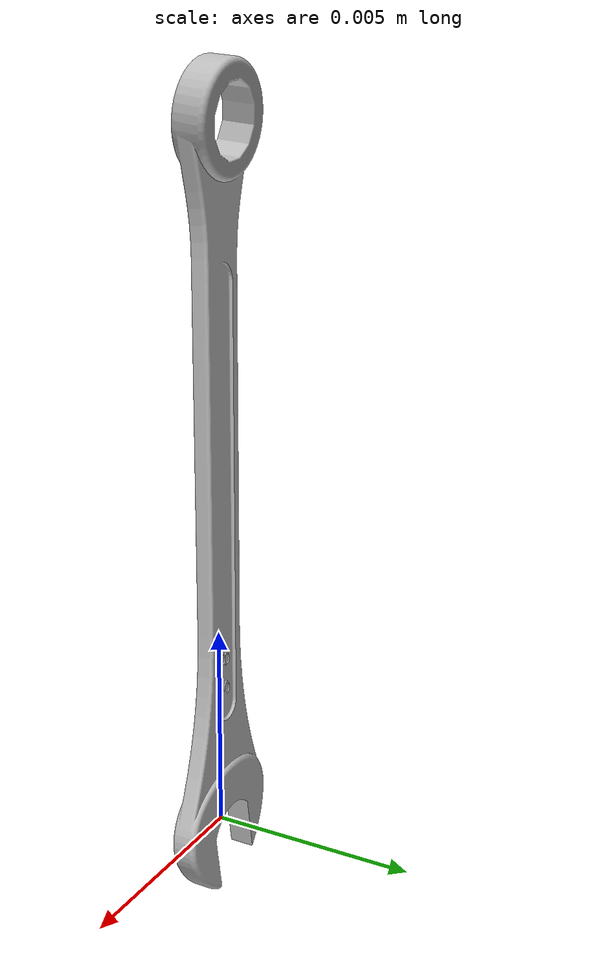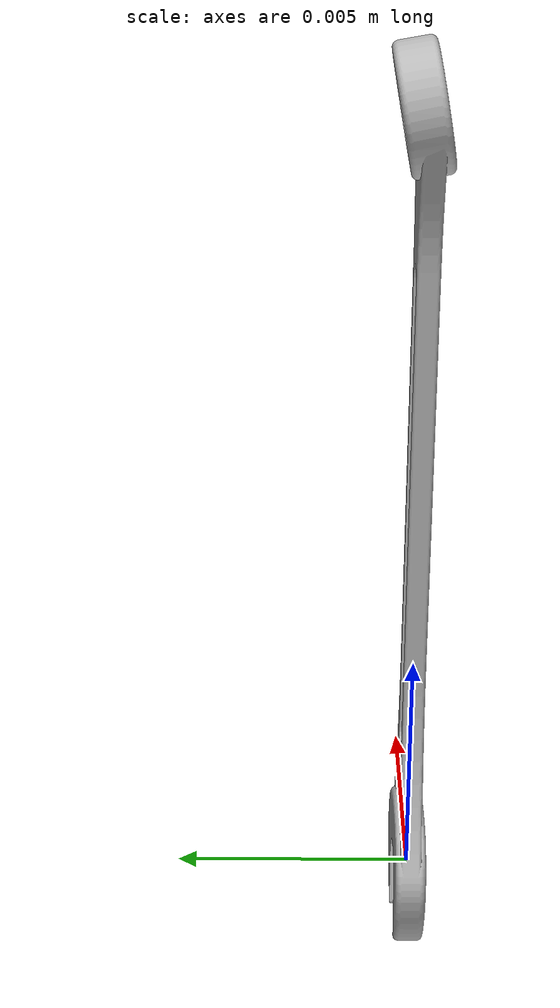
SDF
<?xml version="1.0" ?>
<sdf version="1.5">
  <model name="wrench">
    <static>false</static>
    <link name="link">
    	<!-- orient the model with 90 degree roll and on one end-->
		<pose>0 0 0 0 -1.571 0</pose>
		<inertial>
		    <mass>.3</mass>
	        <inertia>
	          <ixx>7.836677</ixx>
	          <ixy>-3.548755</ixy>
	          <ixz>-2.023339</ixz>
	          <iyy>585.166260</iyy>
	          <iyz>-0.005975</iyz>
	          <izz>578.227600</izz>
	        </inertia>
      	</inertial>
		<visual name="visual">
			<geometry>
				<mesh>
					<scale>0.001 0.001 0.001</scale>
					<uri>model://5_8_wrench/meshes/5_8_wrench.stl</uri>
				</mesh>
			</geometry>
		</visual>
		<collision name="collision">
			<geometry>
				<mesh>
					<scale>0.001 0.001 0.001</scale>
					<uri>model://5_8_wrench/meshes/5_8_wrench.stl</uri>
				</mesh>
			</geometry>
		</collision>
	</link>
	</model>
</sdf>
